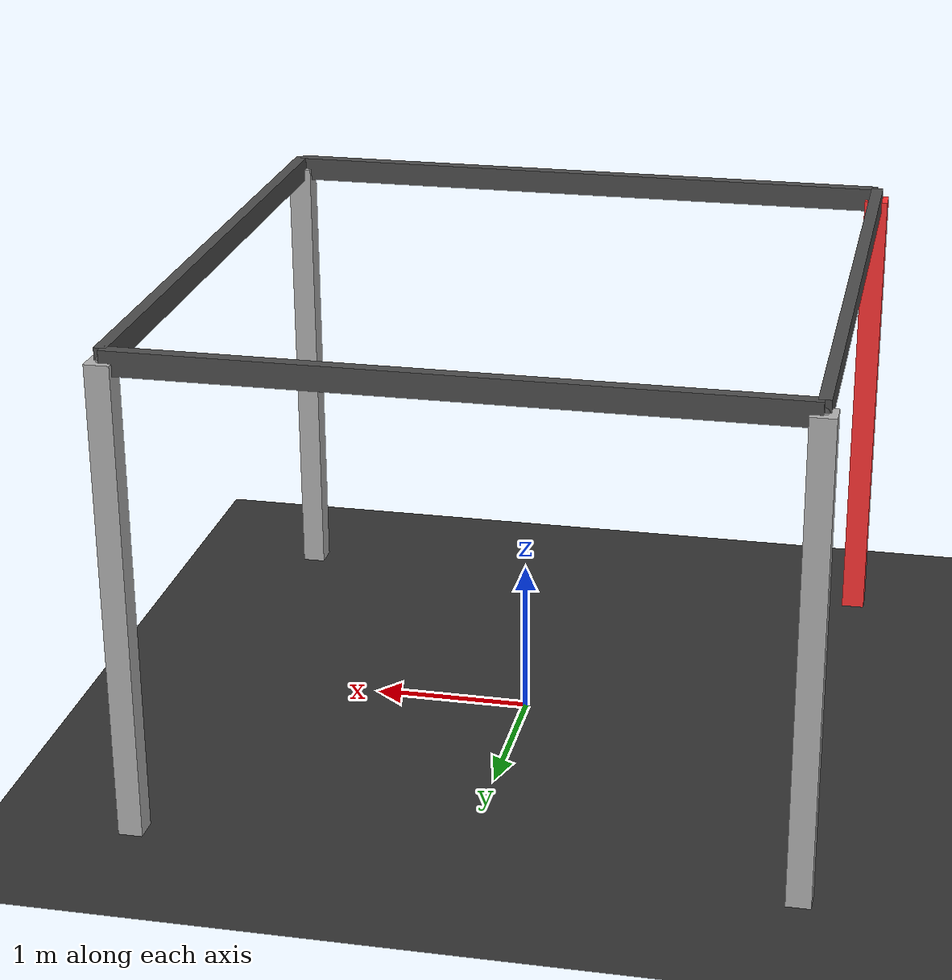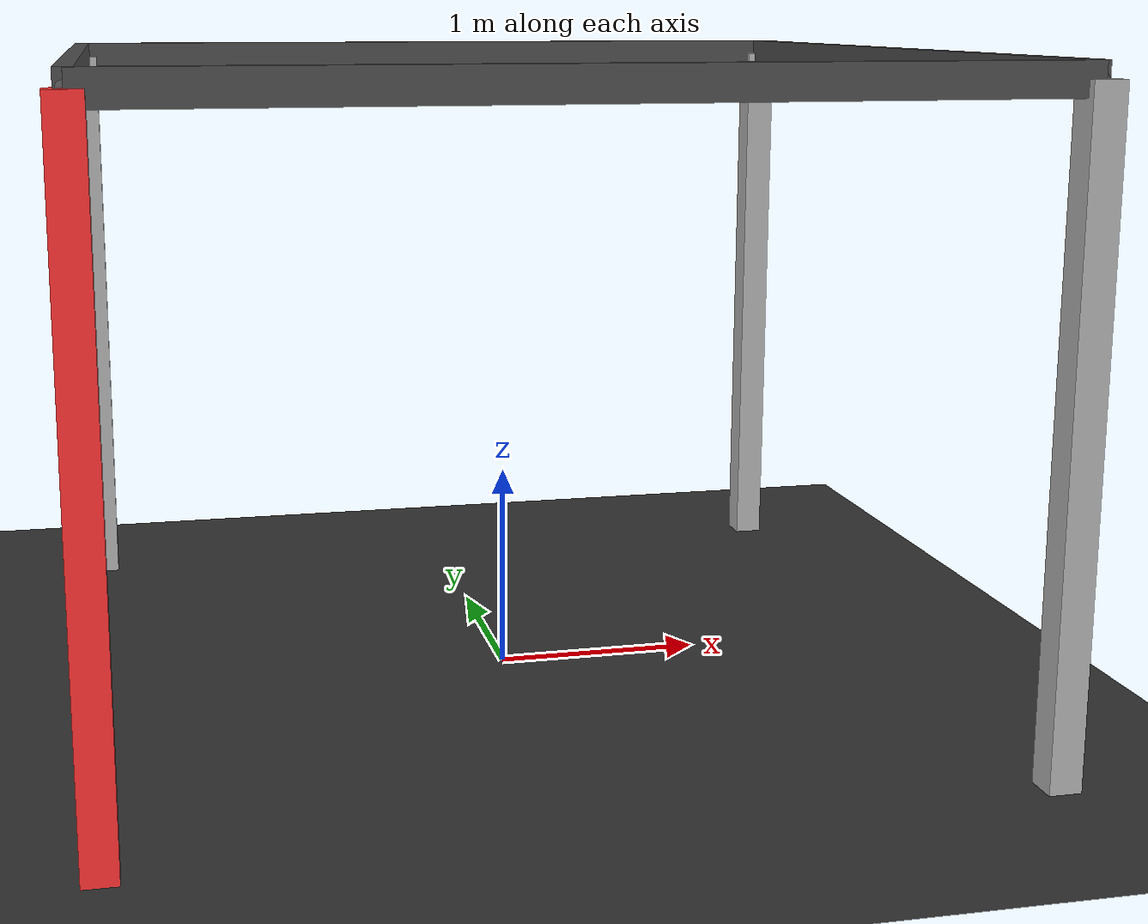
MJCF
<?xml version="1.0"?>
<mujoco model="frame_3d">
  <option gravity="0 0 -9.81" timestep="0.004" iterations="100" tolerance="1e-8"/>
  <visual><global offwidth="1200" offheight="800"/></visual>
  <asset>
    <texture name="grid" type="2d" builtin="checker" width="512" height="512" rgb1=".15 .15 .15" rgb2=".25 .25 .25"/>
    <material name="grid" texture="grid" texrepeat="1 1" texuniform="true"/>
  </asset>
  <worldbody>
    <geom name="ground" type="plane" size="8 8 0.1" material="grid"/>
    <body name="anchor_ground_1" pos="-2.0 -2.0 0.0">
      <freejoint/>
      <geom type="sphere" size="0.02" rgba="0 0 0 0"/>
    </body>
    <body name="anchor_ground_2" pos="2.0 -2.0 0.0">
      <freejoint/>
      <geom type="sphere" size="0.02" rgba="0 0 0 0"/>
    </body>
    <body name="anchor_ground_3" pos="2.0 2.0 0.0">
      <freejoint/>
      <geom type="sphere" size="0.02" rgba="0 0 0 0"/>
    </body>
    <body name="anchor_ground_4" pos="-2.0 2.0 0.0">
      <freejoint/>
      <geom type="sphere" size="0.02" rgba="0 0 0 0"/>
    </body>
    <body name="joint_5" pos="-2.0 -2.0 3.0">
      <freejoint/>
      <geom type="sphere" size="0.03" rgba=".5 .5 .5 .3"/>
    </body>
    <body name="joint_6" pos="2.0 -2.0 3.0">
      <freejoint/>
      <geom type="sphere" size="0.03" rgba=".5 .5 .5 .3"/>
    </body>
    <body name="joint_7" pos="2.0 2.0 3.0">
      <freejoint/>
      <geom type="sphere" size="0.03" rgba=".5 .5 .5 .3"/>
    </body>
    <body name="joint_8" pos="-2.0 2.0 3.0">
      <freejoint/>
      <geom type="sphere" size="0.03" rgba=".5 .5 .5 .3"/>
    </body>
    <body name="C1" pos="-2.0 -2.0 1.5">
      <freejoint/>
      <geom type="box" size="0.075 0.075 1.5" rgba="1 0.2 0.2 1"/>
    </body>
    <body name="C2" pos="2.0 -2.0 1.5">
      <freejoint/>
      <geom type="box" size="0.075 0.075 1.5" rgba="0.7 0.7 0.7 1"/>
    </body>
    <body name="C3" pos="2.0 2.0 1.5">
      <freejoint/>
      <geom type="box" size="0.075 0.075 1.5" rgba="0.7 0.7 0.7 1"/>
    </body>
    <body name="C4" pos="-2.0 2.0 1.5">
      <freejoint/>
      <geom type="box" size="0.075 0.075 1.5" rgba="0.7 0.7 0.7 1"/>
    </body>
    <body name="B5" pos="0.0 -2.0 3.0">
      <freejoint/>
      <geom type="box" size="2.0 0.0375 0.075" rgba="0.3 0.3 0.3 1"/>
    </body>
    <body name="B6" pos="0.0 2.0 3.0">
      <freejoint/>
      <geom type="box" size="2.0 0.0375 0.075" rgba="0.3 0.3 0.3 1"/>
    </body>
    <body name="B7" pos="-2.0 0.0 3.0">
      <freejoint/>
      <geom type="box" size="0.0375 2.0 0.075" rgba="0.3 0.3 0.3 1"/>
    </body>
    <body name="B8" pos="2.0 0.0 3.0">
      <freejoint/>
      <geom type="box" size="0.0375 2.0 0.075" rgba="0.3 0.3 0.3 1"/>
    </body>
  </worldbody>
  <equality>
    <weld name="base_1" body1="anchor_ground_1" body2="C1" relpose="0 0 1.5 1 0 0 0"/>
    <weld name="base_2" body1="anchor_ground_2" body2="C2" relpose="0 0 1.5 1 0 0 0"/>
    <weld name="base_3" body1="anchor_ground_3" body2="C3" relpose="0 0 1.5 1 0 0 0"/>
    <weld name="base_4" body1="anchor_ground_4" body2="C4" relpose="0 0 1.5 1 0 0 0"/>
    <weld name="top_1" body1="C1" body2="joint_5" relpose="0 0 1.5 1 0 0 0"/>
    <weld name="top_2" body1="C2" body2="joint_6" relpose="0 0 1.5 1 0 0 0"/>
    <weld name="top_3" body1="C3" body2="joint_7" relpose="0 0 1.5 1 0 0 0"/>
    <weld name="top_4" body1="C4" body2="joint_8" relpose="0 0 1.5 1 0 0 0"/>
    <weld name="B5_i" body1="B5" body2="joint_5" relpose="-2.0 0 0 1 0 0 0"/>
    <weld name="B5_j" body1="B5" body2="joint_6" relpose="2.0 0 0 1 0 0 0"/>
    <weld name="B6_i" body1="B6" body2="joint_8" relpose="-2.0 0 0 1 0 0 0"/>
    <weld name="B6_j" body1="B6" body2="joint_7" relpose="2.0 0 0 1 0 0 0"/>
    <weld name="B7_i" body1="B7" body2="joint_5" relpose="0 -2.0 0 1 0 0 0"/>
    <weld name="B7_j" body1="B7" body2="joint_8" relpose="0 2.0 0 1 0 0 0"/>
    <weld name="B8_i" body1="B8" body2="joint_6" relpose="0 -2.0 0 1 0 0 0"/>
    <weld name="B8_j" body1="B8" body2="joint_7" relpose="0 2.0 0 1 0 0 0"/>
  </equality>
</mujoco>
